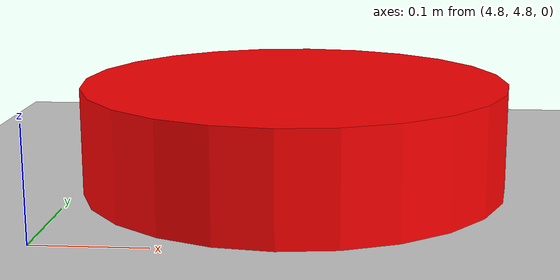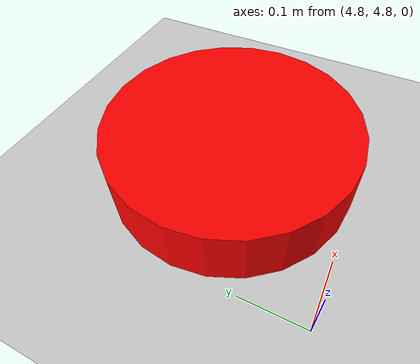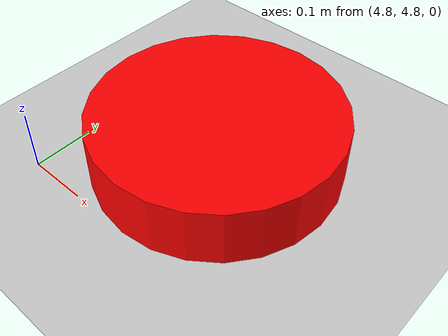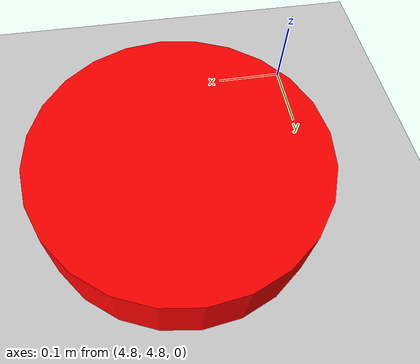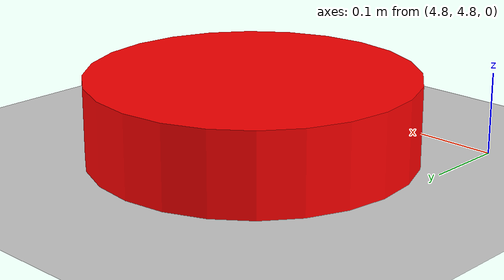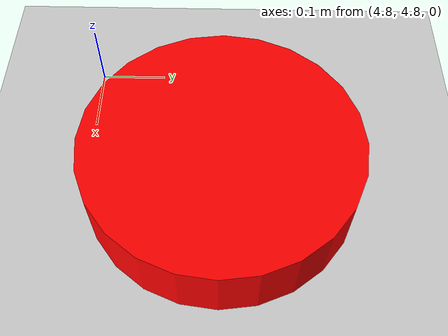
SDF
<?xml version="1.0" ?>
<sdf version="1.6">
  <world name="default">
    <include>
      <uri>model://ground_plane</uri>
    </include>
    <include>
      <uri>model://sun</uri>
    </include>
    <model name="goal_marker">
      <static>true</static>
      <link name="goal_link">
        <visual name="goal_visual">
          <geometry>
            <cylinder>
              <radius>0.2</radius>
              <length>0.1</length>
            </cylinder>
          </geometry>
          <material>
            <ambient>1 0 0 1</ambient>
            <diffuse>1 0 0 1</diffuse>
          </material>
        </visual>
        <pose>5 5 0.05 0 0 0</pose>
      </link>
    </model>
  </world>
</sdf>
